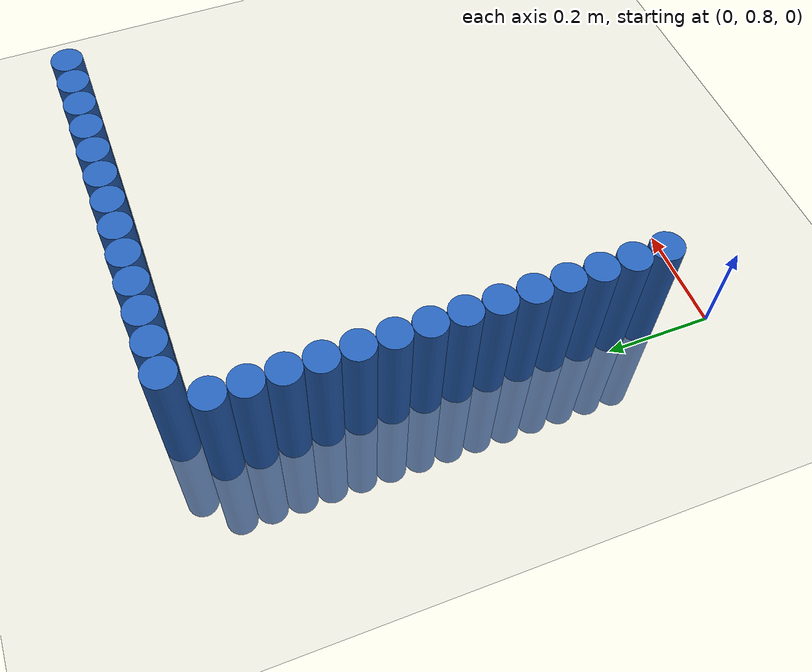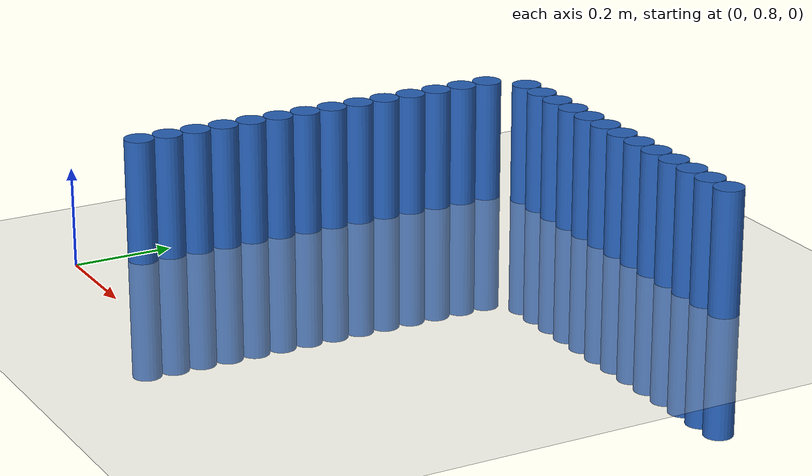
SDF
<sdf version="1.6">
 <world name="default">
  <model name="ground_plane">
   <static>1</static>
   <link name="link">
    <collision name="collision">
     <geometry><plane><normal>0 0 1</normal><size>100 100</size></plane></geometry>
     <surface><friction><ode><mu>100</mu><mu2>50</mu2></ode></friction></surface>
    </collision>
    <visual name="visual">
     <cast_shadows>0</cast_shadows>
     <geometry><plane><normal>0 0 1</normal><size>100 100</size></plane></geometry>
     <material>
      <script><uri>file://media/materials/scripts/gazebo.material</uri><name>Gazebo/Grey</name></script>
     </material>
    </visual>
   </link>
  </model>
  <model name="unit_cylinder_15">
   <static>1</static>
   <pose>0.030000 0.930000 0.000000 0.000000 0.000000 0.000000</pose>
   <link name="link">
    <inertial>
     <mass>1</mass>
     <inertia><ixx>0.145833</ixx><ixy>0</ixy><ixz>0</ixz><iyy>0.145833</iyy><iyz>0</iyz><izz>0.125</izz></inertia>
    </inertial>
    <collision name="collision">
     <geometry><cylinder><radius>0.030000</radius><length>0.5</length></cylinder></geometry>
    </collision>
    <visual name="visual">
     <geometry><cylinder><radius>0.030000</radius><length>0.5</length></cylinder></geometry>
     <material>
      <ambient>0.152000 0.379000 0.720000 1</ambient>
      <diffuse>0.152000 0.379000 0.720000 1</diffuse>
     </material>
     <material>
      <script><name>Gazebo/Grey</name><uri>file://media/materials/scripts/gazebo.material</uri></script>
     </material>
    </visual>
   </link>
  </model>
  <model name="unit_cylinder_16">
   <static>1</static>
   <pose>0.030000 0.990000 0.000000 0.000000 0.000000 0.000000</pose>
   <link name="link">
    <inertial>
     <mass>1</mass>
     <inertia><ixx>0.145833</ixx><ixy>0</ixy><ixz>0</ixz><iyy>0.145833</iyy><iyz>0</iyz><izz>0.125</izz></inertia>
    </inertial>
    <collision name="collision">
     <geometry><cylinder><radius>0.030000</radius><length>0.5</length></cylinder></geometry>
    </collision>
    <visual name="visual">
     <geometry><cylinder><radius>0.030000</radius><length>0.5</length></cylinder></geometry>
     <material>
      <ambient>0.152000 0.379000 0.720000 1</ambient>
      <diffuse>0.152000 0.379000 0.720000 1</diffuse>
     </material>
     <material>
      <script><name>Gazebo/Grey</name><uri>file://media/materials/scripts/gazebo.material</uri></script>
     </material>
    </visual>
   </link>
  </model>
  <model name="unit_cylinder_17">
   <static>1</static>
   <pose>0.030000 1.050000 0.000000 0.000000 0.000000 0.000000</pose>
   <link name="link">
    <inertial>
     <mass>1</mass>
     <inertia><ixx>0.145833</ixx><ixy>0</ixy><ixz>0</ixz><iyy>0.145833</iyy><iyz>0</iyz><izz>0.125</izz></inertia>
    </inertial>
    <collision name="collision">
     <geometry><cylinder><radius>0.030000</radius><length>0.5</length></cylinder></geometry>
    </collision>
    <visual name="visual">
     <geometry><cylinder><radius>0.030000</radius><length>0.5</length></cylinder></geometry>
     <material>
      <ambient>0.152000 0.379000 0.720000 1</ambient>
      <diffuse>0.152000 0.379000 0.720000 1</diffuse>
     </material>
     <material>
      <script><name>Gazebo/Grey</name><uri>file://media/materials/scripts/gazebo.material</uri></script>
     </material>
    </visual>
   </link>
  </model>
  <model name="unit_cylinder_18">
   <static>1</static>
   <pose>0.030000 1.110000 0.000000 0.000000 0.000000 0.000000</pose>
   <link name="link">
    <inertial>
     <mass>1</mass>
     <inertia><ixx>0.145833</ixx><ixy>0</ixy><ixz>0</ixz><iyy>0.145833</iyy><iyz>0</iyz><izz>0.125</izz></inertia>
    </inertial>
    <collision name="collision">
     <geometry><cylinder><radius>0.030000</radius><length>0.5</length></cylinder></geometry>
    </collision>
    <visual name="visual">
     <geometry><cylinder><radius>0.030000</radius><length>0.5</length></cylinder></geometry>
     <material>
      <ambient>0.152000 0.379000 0.720000 1</ambient>
      <diffuse>0.152000 0.379000 0.720000 1</diffuse>
     </material>
     <material>
      <script><name>Gazebo/Grey</name><uri>file://media/materials/scripts/gazebo.material</uri></script>
     </material>
    </visual>
   </link>
  </model>
  <model name="unit_cylinder_19">
   <static>1</static>
   <pose>0.030000 1.170000 0.000000 0.000000 0.000000 0.000000</pose>
   <link name="link">
    <inertial>
     <mass>1</mass>
     <inertia><ixx>0.145833</ixx><ixy>0</ixy><ixz>0</ixz><iyy>0.145833</iyy><iyz>0</iyz><izz>0.125</izz></inertia>
    </inertial>
    <collision name="collision">
     <geometry><cylinder><radius>0.030000</radius><length>0.5</length></cylinder></geometry>
    </collision>
    <visual name="visual">
     <geometry><cylinder><radius>0.030000</radius><length>0.5</length></cylinder></geometry>
     <material>
      <ambient>0.152000 0.379000 0.720000 1</ambient>
      <diffuse>0.152000 0.379000 0.720000 1</diffuse>
     </material>
     <material>
      <script><name>Gazebo/Grey</name><uri>file://media/materials/scripts/gazebo.material</uri></script>
     </material>
    </visual>
   </link>
  </model>
  <model name="unit_cylinder_20">
   <static>1</static>
   <pose>0.030000 1.230000 0.000000 0.000000 0.000000 0.000000</pose>
   <link name="link">
    <inertial>
     <mass>1</mass>
     <inertia><ixx>0.145833</ixx><ixy>0</ixy><ixz>0</ixz><iyy>0.145833</iyy><iyz>0</iyz><izz>0.125</izz></inertia>
    </inertial>
    <collision name="collision">
     <geometry><cylinder><radius>0.030000</radius><length>0.5</length></cylinder></geometry>
    </collision>
    <visual name="visual">
     <geometry><cylinder><radius>0.030000</radius><length>0.5</length></cylinder></geometry>
     <material>
      <ambient>0.152000 0.379000 0.720000 1</ambient>
      <diffuse>0.152000 0.379000 0.720000 1</diffuse>
     </material>
     <material>
      <script><name>Gazebo/Grey</name><uri>file://media/materials/scripts/gazebo.material</uri></script>
     </material>
    </visual>
   </link>
  </model>
  <model name="unit_cylinder_21">
   <static>1</static>
   <pose>0.030000 1.290000 0.000000 0.000000 0.000000 0.000000</pose>
   <link name="link">
    <inertial>
     <mass>1</mass>
     <inertia><ixx>0.145833</ixx><ixy>0</ixy><ixz>0</ixz><iyy>0.145833</iyy><iyz>0</iyz><izz>0.125</izz></inertia>
    </inertial>
    <collision name="collision">
     <geometry><cylinder><radius>0.030000</radius><length>0.5</length></cylinder></geometry>
    </collision>
    <visual name="visual">
     <geometry><cylinder><radius>0.030000</radius><length>0.5</length></cylinder></geometry>
     <material>
      <ambient>0.152000 0.379000 0.720000 1</ambient>
      <diffuse>0.152000 0.379000 0.720000 1</diffuse>
     </material>
     <material>
      <script><name>Gazebo/Grey</name><uri>file://media/materials/scripts/gazebo.material</uri></script>
     </material>
    </visual>
   </link>
  </model>
  <model name="unit_cylinder_22">
   <static>1</static>
   <pose>0.030000 1.350000 0.000000 0.000000 0.000000 0.000000</pose>
   <link name="link">
    <inertial>
     <mass>1</mass>
     <inertia><ixx>0.145833</ixx><ixy>0</ixy><ixz>0</ixz><iyy>0.145833</iyy><iyz>0</iyz><izz>0.125</izz></inertia>
    </inertial>
    <collision name="collision">
     <geometry><cylinder><radius>0.030000</radius><length>0.5</length></cylinder></geometry>
    </collision>
    <visual name="visual">
     <geometry><cylinder><radius>0.030000</radius><length>0.5</length></cylinder></geometry>
     <material>
      <ambient>0.152000 0.379000 0.720000 1</ambient>
      <diffuse>0.152000 0.379000 0.720000 1</diffuse>
     </material>
     <material>
      <script><name>Gazebo/Grey</name><uri>file://media/materials/scripts/gazebo.material</uri></script>
     </material>
    </visual>
   </link>
  </model>
  <model name="unit_cylinder_23">
   <static>1</static>
   <pose>0.030000 1.410000 0.000000 0.000000 0.000000 0.000000</pose>
   <link name="link">
    <inertial>
     <mass>1</mass>
     <inertia><ixx>0.145833</ixx><ixy>0</ixy><ixz>0</ixz><iyy>0.145833</iyy><iyz>0</iyz><izz>0.125</izz></inertia>
    </inertial>
    <collision name="collision">
     <geometry><cylinder><radius>0.030000</radius><length>0.5</length></cylinder></geometry>
    </collision>
    <visual name="visual">
     <geometry><cylinder><radius>0.030000</radius><length>0.5</length></cylinder></geometry>
     <material>
      <ambient>0.152000 0.379000 0.720000 1</ambient>
      <diffuse>0.152000 0.379000 0.720000 1</diffuse>
     </material>
     <material>
      <script><name>Gazebo/Grey</name><uri>file://media/materials/scripts/gazebo.material</uri></script>
     </material>
    </visual>
   </link>
  </model>
  <model name="unit_cylinder_24">
   <static>1</static>
   <pose>0.030000 1.470000 0.000000 0.000000 0.000000 0.000000</pose>
   <link name="link">
    <inertial>
     <mass>1</mass>
     <inertia><ixx>0.145833</ixx><ixy>0</ixy><ixz>0</ixz><iyy>0.145833</iyy><iyz>0</iyz><izz>0.125</izz></inertia>
    </inertial>
    <collision name="collision">
     <geometry><cylinder><radius>0.030000</radius><length>0.5</length></cylinder></geometry>
    </collision>
    <visual name="visual">
     <geometry><cylinder><radius>0.030000</radius><length>0.5</length></cylinder></geometry>
     <material>
      <ambient>0.152000 0.379000 0.720000 1</ambient>
      <diffuse>0.152000 0.379000 0.720000 1</diffuse>
     </material>
     <material>
      <script><name>Gazebo/Grey</name><uri>file://media/materials/scripts/gazebo.material</uri></script>
     </material>
    </visual>
   </link>
  </model>
  <model name="unit_cylinder_25">
   <static>1</static>
   <pose>0.030000 1.530000 0.000000 0.000000 0.000000 0.000000</pose>
   <link name="link">
    <inertial>
     <mass>1</mass>
     <inertia><ixx>0.145833</ixx><ixy>0</ixy><ixz>0</ixz><iyy>0.145833</iyy><iyz>0</iyz><izz>0.125</izz></inertia>
    </inertial>
    <collision name="collision">
     <geometry><cylinder><radius>0.030000</radius><length>0.5</length></cylinder></geometry>
    </collision>
    <visual name="visual">
     <geometry><cylinder><radius>0.030000</radius><length>0.5</length></cylinder></geometry>
     <material>
      <ambient>0.152000 0.379000 0.720000 1</ambient>
      <diffuse>0.152000 0.379000 0.720000 1</diffuse>
     </material>
     <material>
      <script><name>Gazebo/Grey</name><uri>file://media/materials/scripts/gazebo.material</uri></script>
     </material>
    </visual>
   </link>
  </model>
  <model name="unit_cylinder_26">
   <static>1</static>
   <pose>0.030000 1.590000 0.000000 0.000000 0.000000 0.000000</pose>
   <link name="link">
    <inertial>
     <mass>1</mass>
     <inertia><ixx>0.145833</ixx><ixy>0</ixy><ixz>0</ixz><iyy>0.145833</iyy><iyz>0</iyz><izz>0.125</izz></inertia>
    </inertial>
    <collision name="collision">
     <geometry><cylinder><radius>0.030000</radius><length>0.5</length></cylinder></geometry>
    </collision>
    <visual name="visual">
     <geometry><cylinder><radius>0.030000</radius><length>0.5</length></cylinder></geometry>
     <material>
      <ambient>0.152000 0.379000 0.720000 1</ambient>
      <diffuse>0.152000 0.379000 0.720000 1</diffuse>
     </material>
     <material>
      <script><name>Gazebo/Grey</name><uri>file://media/materials/scripts/gazebo.material</uri></script>
     </material>
    </visual>
   </link>
  </model>
  <model name="unit_cylinder_27">
   <static>1</static>
   <pose>0.030000 1.650000 0.000000 0.000000 0.000000 0.000000</pose>
   <link name="link">
    <inertial>
     <mass>1</mass>
     <inertia><ixx>0.145833</ixx><ixy>0</ixy><ixz>0</ixz><iyy>0.145833</iyy><iyz>0</iyz><izz>0.125</izz></inertia>
    </inertial>
    <collision name="collision">
     <geometry><cylinder><radius>0.030000</radius><length>0.5</length></cylinder></geometry>
    </collision>
    <visual name="visual">
     <geometry><cylinder><radius>0.030000</radius><length>0.5</length></cylinder></geometry>
     <material>
      <ambient>0.152000 0.379000 0.720000 1</ambient>
      <diffuse>0.152000 0.379000 0.720000 1</diffuse>
     </material>
     <material>
      <script><name>Gazebo/Grey</name><uri>file://media/materials/scripts/gazebo.material</uri></script>
     </material>
    </visual>
   </link>
  </model>
  <model name="unit_cylinder_28">
   <static>1</static>
   <pose>0.030000 1.710000 0.000000 0.000000 0.000000 0.000000</pose>
   <link name="link">
    <inertial>
     <mass>1</mass>
     <inertia><ixx>0.145833</ixx><ixy>0</ixy><ixz>0</ixz><iyy>0.145833</iyy><iyz>0</iyz><izz>0.125</izz></inertia>
    </inertial>
    <collision name="collision">
     <geometry><cylinder><radius>0.030000</radius><length>0.5</length></cylinder></geometry>
    </collision>
    <visual name="visual">
     <geometry><cylinder><radius>0.030000</radius><length>0.5</length></cylinder></geometry>
     <material>
      <ambient>0.152000 0.379000 0.720000 1</ambient>
      <diffuse>0.152000 0.379000 0.720000 1</diffuse>
     </material>
     <material>
      <script><name>Gazebo/Grey</name><uri>file://media/materials/scripts/gazebo.material</uri></script>
     </material>
    </visual>
   </link>
  </model>
  <model name="unit_cylinder_30">
   <static>1</static>
   <pose>0.090000 1.770000 0.000000 0.000000 0.000000 0.000000</pose>
   <link name="link">
    <inertial>
     <mass>1</mass>
     <inertia><ixx>0.145833</ixx><ixy>0</ixy><ixz>0</ixz><iyy>0.145833</iyy><iyz>0</iyz><izz>0.125</izz></inertia>
    </inertial>
    <collision name="collision">
     <geometry><cylinder><radius>0.030000</radius><length>0.5</length></cylinder></geometry>
    </collision>
    <visual name="visual">
     <geometry><cylinder><radius>0.030000</radius><length>0.5</length></cylinder></geometry>
     <material>
      <ambient>0.152000 0.379000 0.720000 1</ambient>
      <diffuse>0.152000 0.379000 0.720000 1</diffuse>
     </material>
     <material>
      <script><name>Gazebo/Grey</name><uri>file://media/materials/scripts/gazebo.material</uri></script>
     </material>
    </visual>
   </link>
  </model>
  <model name="unit_cylinder_32">
   <static>1</static>
   <pose>0.150000 1.770000 0.000000 0.000000 0.000000 0.000000</pose>
   <link name="link">
    <inertial>
     <mass>1</mass>
     <inertia><ixx>0.145833</ixx><ixy>0</ixy><ixz>0</ixz><iyy>0.145833</iyy><iyz>0</iyz><izz>0.125</izz></inertia>
    </inertial>
    <collision name="collision">
     <geometry><cylinder><radius>0.030000</radius><length>0.5</length></cylinder></geometry>
    </collision>
    <visual name="visual">
     <geometry><cylinder><radius>0.030000</radius><length>0.5</length></cylinder></geometry>
     <material>
      <ambient>0.152000 0.379000 0.720000 1</ambient>
      <diffuse>0.152000 0.379000 0.720000 1</diffuse>
     </material>
     <material>
      <script><name>Gazebo/Grey</name><uri>file://media/materials/scripts/gazebo.material</uri></script>
     </material>
    </visual>
   </link>
  </model>
  <model name="unit_cylinder_34">
   <static>1</static>
   <pose>0.210000 1.770000 0.000000 0.000000 0.000000 0.000000</pose>
   <link name="link">
    <inertial>
     <mass>1</mass>
     <inertia><ixx>0.145833</ixx><ixy>0</ixy><ixz>0</ixz><iyy>0.145833</iyy><iyz>0</iyz><izz>0.125</izz></inertia>
    </inertial>
    <collision name="collision">
     <geometry><cylinder><radius>0.030000</radius><length>0.5</length></cylinder></geometry>
    </collision>
    <visual name="visual">
     <geometry><cylinder><radius>0.030000</radius><length>0.5</length></cylinder></geometry>
     <material>
      <ambient>0.152000 0.379000 0.720000 1</ambient>
      <diffuse>0.152000 0.379000 0.720000 1</diffuse>
     </material>
     <material>
      <script><name>Gazebo/Grey</name><uri>file://media/materials/scripts/gazebo.material</uri></script>
     </material>
    </visual>
   </link>
  </model>
  <model name="unit_cylinder_36">
   <static>1</static>
   <pose>0.270000 1.770000 0.000000 0.000000 0.000000 0.000000</pose>
   <link name="link">
    <inertial>
     <mass>1</mass>
     <inertia><ixx>0.145833</ixx><ixy>0</ixy><ixz>0</ixz><iyy>0.145833</iyy><iyz>0</iyz><izz>0.125</izz></inertia>
    </inertial>
    <collision name="collision">
     <geometry><cylinder><radius>0.030000</radius><length>0.5</length></cylinder></geometry>
    </collision>
    <visual name="visual">
     <geometry><cylinder><radius>0.030000</radius><length>0.5</length></cylinder></geometry>
     <material>
      <ambient>0.152000 0.379000 0.720000 1</ambient>
      <diffuse>0.152000 0.379000 0.720000 1</diffuse>
     </material>
     <material>
      <script><name>Gazebo/Grey</name><uri>file://media/materials/scripts/gazebo.material</uri></script>
     </material>
    </visual>
   </link>
  </model>
  <model name="unit_cylinder_38">
   <static>1</static>
   <pose>0.330000 1.770000 0.000000 0.000000 0.000000 0.000000</pose>
   <link name="link">
    <inertial>
     <mass>1</mass>
     <inertia><ixx>0.145833</ixx><ixy>0</ixy><ixz>0</ixz><iyy>0.145833</iyy><iyz>0</iyz><izz>0.125</izz></inertia>
    </inertial>
    <collision name="collision">
     <geometry><cylinder><radius>0.030000</radius><length>0.5</length></cylinder></geometry>
    </collision>
    <visual name="visual">
     <geometry><cylinder><radius>0.030000</radius><length>0.5</length></cylinder></geometry>
     <material>
      <ambient>0.152000 0.379000 0.720000 1</ambient>
      <diffuse>0.152000 0.379000 0.720000 1</diffuse>
     </material>
     <material>
      <script><name>Gazebo/Grey</name><uri>file://media/materials/scripts/gazebo.material</uri></script>
     </material>
    </visual>
   </link>
  </model>
  <model name="unit_cylinder_40">
   <static>1</static>
   <pose>0.390000 1.770000 0.000000 0.000000 0.000000 0.000000</pose>
   <link name="link">
    <inertial>
     <mass>1</mass>
     <inertia><ixx>0.145833</ixx><ixy>0</ixy><ixz>0</ixz><iyy>0.145833</iyy><iyz>0</iyz><izz>0.125</izz></inertia>
    </inertial>
    <collision name="collision">
     <geometry><cylinder><radius>0.030000</radius><length>0.5</length></cylinder></geometry>
    </collision>
    <visual name="visual">
     <geometry><cylinder><radius>0.030000</radius><length>0.5</length></cylinder></geometry>
     <material>
      <ambient>0.152000 0.379000 0.720000 1</ambient>
      <diffuse>0.152000 0.379000 0.720000 1</diffuse>
     </material>
     <material>
      <script><name>Gazebo/Grey</name><uri>file://media/materials/scripts/gazebo.material</uri></script>
     </material>
    </visual>
   </link>
  </model>
  <model name="unit_cylinder_42">
   <static>1</static>
   <pose>0.450000 1.770000 0.000000 0.000000 0.000000 0.000000</pose>
   <link name="link">
    <inertial>
     <mass>1</mass>
     <inertia><ixx>0.145833</ixx><ixy>0</ixy><ixz>0</ixz><iyy>0.145833</iyy><iyz>0</iyz><izz>0.125</izz></inertia>
    </inertial>
    <collision name="collision">
     <geometry><cylinder><radius>0.030000</radius><length>0.5</length></cylinder></geometry>
    </collision>
    <visual name="visual">
     <geometry><cylinder><radius>0.030000</radius><length>0.5</length></cylinder></geometry>
     <material>
      <ambient>0.152000 0.379000 0.720000 1</ambient>
      <diffuse>0.152000 0.379000 0.720000 1</diffuse>
     </material>
     <material>
      <script><name>Gazebo/Grey</name><uri>file://media/materials/scripts/gazebo.material</uri></script>
     </material>
    </visual>
   </link>
  </model>
  <model name="unit_cylinder_44">
   <static>1</static>
   <pose>0.510000 1.770000 0.000000 0.000000 0.000000 0.000000</pose>
   <link name="link">
    <inertial>
     <mass>1</mass>
     <inertia><ixx>0.145833</ixx><ixy>0</ixy><ixz>0</ixz><iyy>0.145833</iyy><iyz>0</iyz><izz>0.125</izz></inertia>
    </inertial>
    <collision name="collision">
     <geometry><cylinder><radius>0.030000</radius><length>0.5</length></cylinder></geometry>
    </collision>
    <visual name="visual">
     <geometry><cylinder><radius>0.030000</radius><length>0.5</length></cylinder></geometry>
     <material>
      <ambient>0.152000 0.379000 0.720000 1</ambient>
      <diffuse>0.152000 0.379000 0.720000 1</diffuse>
     </material>
     <material>
      <script><name>Gazebo/Grey</name><uri>file://media/materials/scripts/gazebo.material</uri></script>
     </material>
    </visual>
   </link>
  </model>
  <model name="unit_cylinder_46">
   <static>1</static>
   <pose>0.570000 1.770000 0.000000 0.000000 0.000000 0.000000</pose>
   <link name="link">
    <inertial>
     <mass>1</mass>
     <inertia><ixx>0.145833</ixx><ixy>0</ixy><ixz>0</ixz><iyy>0.145833</iyy><iyz>0</iyz><izz>0.125</izz></inertia>
    </inertial>
    <collision name="collision">
     <geometry><cylinder><radius>0.030000</radius><length>0.5</length></cylinder></geometry>
    </collision>
    <visual name="visual">
     <geometry><cylinder><radius>0.030000</radius><length>0.5</length></cylinder></geometry>
     <material>
      <ambient>0.152000 0.379000 0.720000 1</ambient>
      <diffuse>0.152000 0.379000 0.720000 1</diffuse>
     </material>
     <material>
      <script><name>Gazebo/Grey</name><uri>file://media/materials/scripts/gazebo.material</uri></script>
     </material>
    </visual>
   </link>
  </model>
  <model name="unit_cylinder_48">
   <static>1</static>
   <pose>0.630000 1.770000 0.000000 0.000000 0.000000 0.000000</pose>
   <link name="link">
    <inertial>
     <mass>1</mass>
     <inertia><ixx>0.145833</ixx><ixy>0</ixy><ixz>0</ixz><iyy>0.145833</iyy><iyz>0</iyz><izz>0.125</izz></inertia>
    </inertial>
    <collision name="collision">
     <geometry><cylinder><radius>0.030000</radius><length>0.5</length></cylinder></geometry>
    </collision>
    <visual name="visual">
     <geometry><cylinder><radius>0.030000</radius><length>0.5</length></cylinder></geometry>
     <material>
      <ambient>0.152000 0.379000 0.720000 1</ambient>
      <diffuse>0.152000 0.379000 0.720000 1</diffuse>
     </material>
     <material>
      <script><name>Gazebo/Grey</name><uri>file://media/materials/scripts/gazebo.material</uri></script>
     </material>
    </visual>
   </link>
  </model>
  <model name="unit_cylinder_50">
   <static>1</static>
   <pose>0.690000 1.770000 0.000000 0.000000 0.000000 0.000000</pose>
   <link name="link">
    <inertial>
     <mass>1</mass>
     <inertia><ixx>0.145833</ixx><ixy>0</ixy><ixz>0</ixz><iyy>0.145833</iyy><iyz>0</iyz><izz>0.125</izz></inertia>
    </inertial>
    <collision name="collision">
     <geometry><cylinder><radius>0.030000</radius><length>0.5</length></cylinder></geometry>
    </collision>
    <visual name="visual">
     <geometry><cylinder><radius>0.030000</radius><length>0.5</length></cylinder></geometry>
     <material>
      <ambient>0.152000 0.379000 0.720000 1</ambient>
      <diffuse>0.152000 0.379000 0.720000 1</diffuse>
     </material>
     <material>
      <script><name>Gazebo/Grey</name><uri>file://media/materials/scripts/gazebo.material</uri></script>
     </material>
    </visual>
   </link>
  </model>
  <model name="unit_cylinder_52">
   <static>1</static>
   <pose>0.750000 1.770000 0.000000 0.000000 0.000000 0.000000</pose>
   <link name="link">
    <inertial>
     <mass>1</mass>
     <inertia><ixx>0.145833</ixx><ixy>0</ixy><ixz>0</ixz><iyy>0.145833</iyy><iyz>0</iyz><izz>0.125</izz></inertia>
    </inertial>
    <collision name="collision">
     <geometry><cylinder><radius>0.030000</radius><length>0.5</length></cylinder></geometry>
    </collision>
    <visual name="visual">
     <geometry><cylinder><radius>0.030000</radius><length>0.5</length></cylinder></geometry>
     <material>
      <ambient>0.152000 0.379000 0.720000 1</ambient>
      <diffuse>0.152000 0.379000 0.720000 1</diffuse>
     </material>
     <material>
      <script><name>Gazebo/Grey</name><uri>file://media/materials/scripts/gazebo.material</uri></script>
     </material>
    </visual>
   </link>
  </model>
  <model name="unit_cylinder_54">
   <static>1</static>
   <pose>0.810000 1.770000 0.000000 0.000000 0.000000 0.000000</pose>
   <link name="link">
    <inertial>
     <mass>1</mass>
     <inertia><ixx>0.145833</ixx><ixy>0</ixy><ixz>0</ixz><iyy>0.145833</iyy><iyz>0</iyz><izz>0.125</izz></inertia>
    </inertial>
    <collision name="collision">
     <geometry><cylinder><radius>0.030000</radius><length>0.5</length></cylinder></geometry>
    </collision>
    <visual name="visual">
     <geometry><cylinder><radius>0.030000</radius><length>0.5</length></cylinder></geometry>
     <material>
      <ambient>0.152000 0.379000 0.720000 1</ambient>
      <diffuse>0.152000 0.379000 0.720000 1</diffuse>
     </material>
     <material>
      <script><name>Gazebo/Grey</name><uri>file://media/materials/scripts/gazebo.material</uri></script>
     </material>
    </visual>
   </link>
  </model>
 </world>
</sdf>
